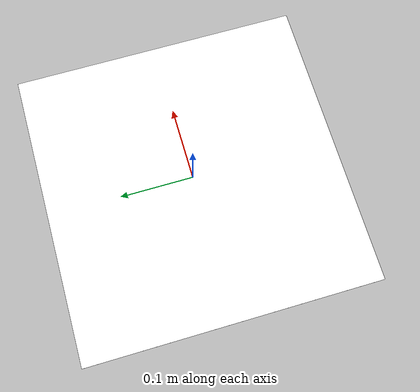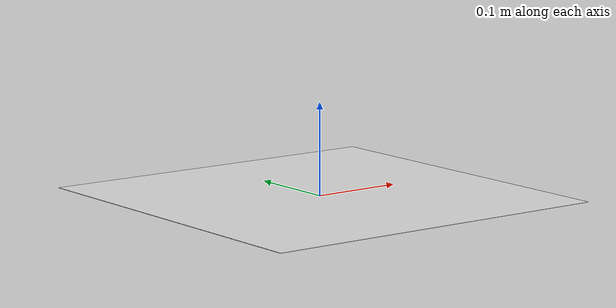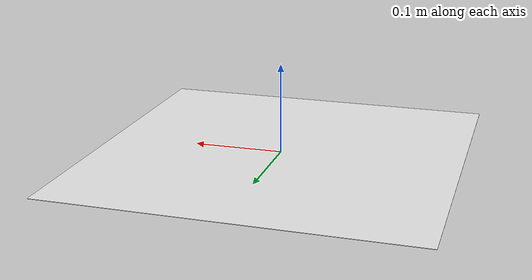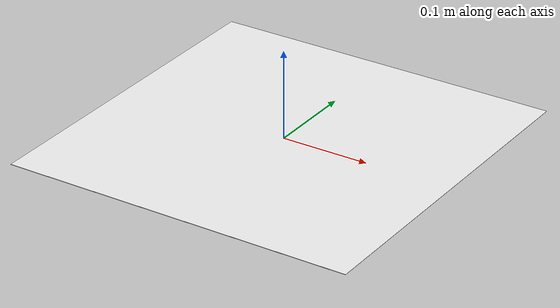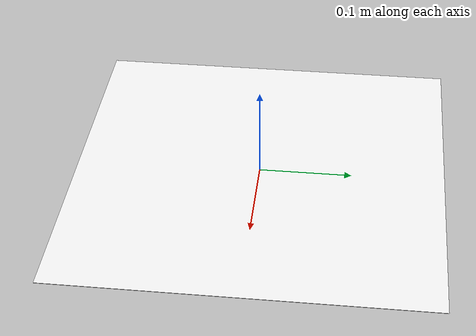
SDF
<?xml version="1.0"?>
<sdf version="1.9">
  <model name="pad_102">
    <static>true</static>
    <link name="link">
      <pose>0 0 0.001 0 0 0</pose>
      <visual name="marker_visual">
        <geometry>
          <plane><normal>0 0 1</normal><size>0.4000 0.4000</size></plane>
        </geometry>
        <material>
          <diffuse>1 1 1 1</diffuse>
          <specular>0 0 0 1</specular>
          <pbr>
            <metal>
              <albedo_map>model://pad_102/materials/textures/pad_102.png</albedo_map>
              <metalness>0.0</metalness>
              <roughness>1.0</roughness>
            </metal>
          </pbr>
        </material>
      </visual>
    </link>
  </model>
</sdf>
